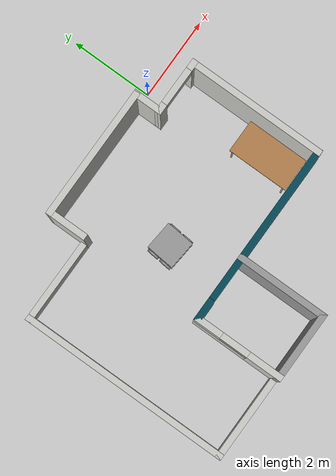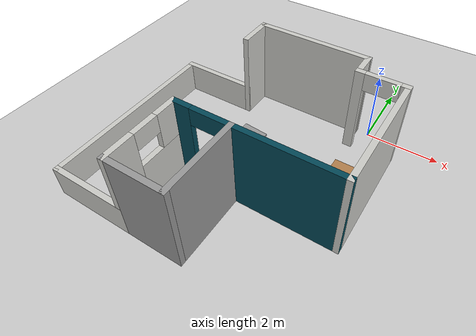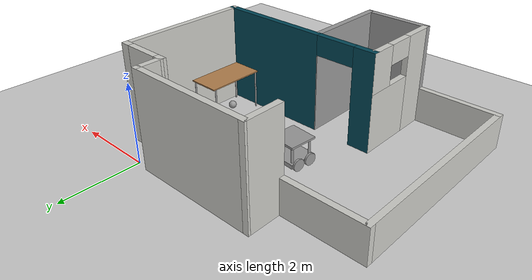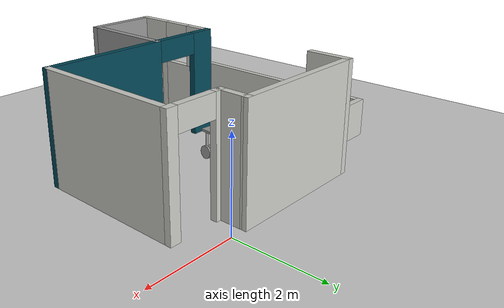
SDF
<sdf version="1.6">
 <world name="default">
  <model name="ground_plane">
   <static>1</static>
   <link name="link">
    <collision name="collision">
     <geometry><plane><normal>0 0 1</normal><size>100 100</size></plane></geometry>
     <surface>
      <contact><collide_bitmask>65535</collide_bitmask></contact>
      <friction><ode><mu>100</mu><mu2>50</mu2></ode></friction>
     </surface>
    </collision>
    <visual name="visual">
     <cast_shadows>0</cast_shadows>
     <geometry><plane><normal>0 0 1</normal><size>100 100</size></plane></geometry>
     <material>
      <script><uri>file://media/materials/scripts/gazebo.material</uri><name>Gazebo/Grey</name></script>
     </material>
    </visual>
   </link>
  </model>
  <model name="Estudio">
   <pose>-2.36913 -2.98637 0 0 -0 0</pose>
   <link name="Wall_10">
    <collision name="Wall_10_Collision">
     <geometry><box><size>0.755589 0.15 2.5</size></box></geometry>
     <pose>0 0 1.25 0 -0 0</pose>
    </collision>
    <visual name="Wall_10_Visual">
     <pose>0 0 1.25 0 -0 0</pose>
     <geometry><box><size>0.755589 0.15 2.5</size></box></geometry>
     <material>
      <script><uri>file://media/materials/scripts/gazebo.material</uri><name>Gazebo/CeilingTiled</name></script>
      <ambient>1 1 1 1</ambient>
     </material>
     <meta><layer>0</layer></meta>
    </visual>
    <pose>1.975 2.67195 0 0 -0 1.57073</pose>
   </link>
   <link name="Wall_11">
    <collision name="Wall_11_Collision">
     <geometry><box><size>3.25 0.15 2.5</size></box></geometry>
     <pose>0 0 1.25 0 -0 0</pose>
    </collision>
    <visual name="Wall_11_Visual">
     <pose>0 0 1.25 0 -0 0</pose>
     <geometry><box><size>3.25 0.15 2.5</size></box></geometry>
     <material>
      <script><uri>file://media/materials/scripts/gazebo.material</uri><name>Gazebo/CeilingTiled</name></script>
      <ambient>1 1 1 1</ambient>
     </material>
     <meta><layer>0</layer></meta>
    </visual>
    <pose>0.425019 2.97484 0 0 -0 3.14159</pose>
   </link>
   <link name="Wall_12">
    <collision name="Wall_12_Collision">
     <geometry><box><size>1 0.15 2.5</size></box></geometry>
     <pose>0 0 1.25 0 -0 0</pose>
    </collision>
    <visual name="Wall_12_Visual">
     <pose>0 0 1.25 0 -0 0</pose>
     <geometry><box><size>1 0.15 2.5</size></box></geometry>
     <material>
      <script><uri>file://media/materials/scripts/gazebo.material</uri><name>Gazebo/CeilingTiled</name></script>
      <ambient>1 1 1 1</ambient>
     </material>
     <meta><layer>0</layer></meta>
    </visual>
    <pose>-1.125 2.54995 0 0 0 -1.57084</pose>
   </link>
   <link name="Wall_13">
    <collision name="Wall_13_Collision">
     <geometry><box><size>2.25 0.15 0.9</size></box></geometry>
     <pose>0 0 0.45 0 -0 0</pose>
    </collision>
    <visual name="Wall_13_Visual">
     <pose>0 0 0.45 0 -0 0</pose>
     <geometry><box><size>2.25 0.15 0.9</size></box></geometry>
     <material>
      <script><uri>file://media/materials/scripts/gazebo.material</uri><name>Gazebo/CeilingTiled</name></script>
      <ambient>1 1 1 1</ambient>
     </material>
     <meta><layer>0</layer></meta>
    </visual>
    <pose>-2.17502 2.12505 0 0 -0 3.14159</pose>
   </link>
   <link name="Wall_14">
    <collision name="Wall_14_Collision">
     <geometry><box><size>5.25 0.15 0.9</size></box></geometry>
     <pose>0 0 0.45 0 -0 0</pose>
    </collision>
    <visual name="Wall_14_Visual">
     <pose>0 0 0.45 0 -0 0</pose>
     <geometry><box><size>5.25 0.15 0.9</size></box></geometry>
     <material>
      <script><uri>file://media/materials/scripts/gazebo.material</uri><name>Gazebo/CeilingTiled</name></script>
      <ambient>1 1 1 1</ambient>
     </material>
     <meta><layer>0</layer></meta>
    </visual>
    <pose>-3.22502 -0.424948 0 0 0 -1.5708</pose>
   </link>
   <link name="Wall_15">
    <collision name="Wall_15_Collision">
     <geometry><box><size>2.25 0.15 0.9</size></box></geometry>
     <pose>0 0 0.45 0 -0 0</pose>
    </collision>
    <visual name="Wall_15_Visual">
     <pose>0 0 0.45 0 -0 0</pose>
     <geometry><box><size>2.25 0.15 0.9</size></box></geometry>
     <material>
      <script><uri>file://media/materials/scripts/gazebo.material</uri><name>Gazebo/CeilingTiled</name></script>
      <ambient>1 1 1 1</ambient>
     </material>
     <meta><layer>0</layer></meta>
    </visual>
    <pose>-2.17502 -2.97495 0 0 -0 0</pose>
   </link>
   <link name="Wall_16">
    <pose>-1.12502 -1.92495 0 0 -0 1.5708</pose>
    <visual name="Wall_16_Visual_0">
     <pose>-0.691612 0 1.25 0 -0 0</pose>
     <geometry><box><size>0.866775 0.15 2.5</size></box></geometry>
     <material>
      <script><uri>file://media/materials/scripts/gazebo.material</uri><name>Gazebo/CeilingTiled</name></script>
      <ambient>1 1 1 1</ambient>
     </material>
     <meta><layer>0</layer></meta>
    </visual>
    <collision name="Wall_16_Collision_0">
     <geometry><box><size>0.866775 0.15 2.5</size></box></geometry>
     <pose>-0.691612 0 1.25 0 -0 0</pose>
    </collision>
    <visual name="Wall_16_Visual_1">
     <pose>0.433388 0 0.75 0 -0 0</pose>
     <geometry><box><size>1.38322 0.15 1.5</size></box></geometry>
     <material>
      <script><uri>file://media/materials/scripts/gazebo.material</uri><name>Gazebo/CeilingTiled</name></script>
      <ambient>1 1 1 1</ambient>
     </material>
     <meta><layer>0</layer></meta>
    </visual>
    <collision name="Wall_16_Collision_1">
     <geometry><box><size>1.38322 0.15 1.5</size></box></geometry>
     <pose>0.433388 0 0.75 0 -0 0</pose>
    </collision>
    <visual name="Wall_16_Visual_2">
     <pose>0.783388 0 2 0 -0 0</pose>
     <geometry><box><size>0.683225 0.15 1</size></box></geometry>
     <material>
      <script><uri>file://media/materials/scripts/gazebo.material</uri><name>Gazebo/CeilingTiled</name></script>
      <ambient>1 1 1 1</ambient>
     </material>
     <meta><layer>0</layer></meta>
    </visual>
    <collision name="Wall_16_Collision_2">
     <geometry><box><size>0.683225 0.15 1</size></box></geometry>
     <pose>0.783388 0 2 0 -0 0</pose>
    </collision>
    <visual name="Wall_16_Visual_3">
     <pose>0.091775 0 2.25 0 -0 0</pose>
     <geometry><box><size>0.7 0.15 0.5</size></box></geometry>
     <material>
      <script><uri>file://media/materials/scripts/gazebo.material</uri><name>Gazebo/CeilingTiled</name></script>
      <ambient>1 1 1 1</ambient>
     </material>
     <meta><layer>0</layer></meta>
    </visual>
    <collision name="Wall_16_Collision_3">
     <geometry><box><size>0.7 0.15 0.5</size></box></geometry>
     <pose>0.091775 0 2.25 0 -0 0</pose>
    </collision>
   </link>
   <link name="Wall_34">
    <pose>2.59998 2.36905 0 0 -0 0</pose>
    <visual name="Wall_34_Visual_0">
     <pose>-0.572677 0 1.25 0 -0 0</pose>
     <geometry><box><size>0.254646 0.15 2.5</size></box></geometry>
     <material>
      <script><uri>file://media/materials/scripts/gazebo.material</uri><name>Gazebo/CeilingTiled</name></script>
      <ambient>1 1 1 1</ambient>
     </material>
     <meta><layer>0</layer></meta>
    </visual>
    <collision name="Wall_34_Collision_0">
     <geometry><box><size>0.254646 0.15 2.5</size></box></geometry>
     <pose>-0.572677 0 1.25 0 -0 0</pose>
    </collision>
    <visual name="Wall_34_Visual_1">
     <pose>0.577323 0 1.25 0 -0 0</pose>
     <geometry><box><size>0.245354 0.15 2.5</size></box></geometry>
     <material>
      <script><uri>file://media/materials/scripts/gazebo.material</uri><name>Gazebo/CeilingTiled</name></script>
      <ambient>1 1 1 1</ambient>
     </material>
     <meta><layer>0</layer></meta>
    </visual>
    <collision name="Wall_34_Collision_1">
     <geometry><box><size>0.245354 0.15 2.5</size></box></geometry>
     <pose>0.577323 0 1.25 0 -0 0</pose>
    </collision>
    <visual name="Wall_34_Visual_2">
     <pose>0.004646 0 2.25 0 -0 0</pose>
     <geometry><box><size>0.9 0.15 0.5</size></box></geometry>
     <material>
      <script><uri>file://media/materials/scripts/gazebo.material</uri><name>Gazebo/CeilingTiled</name></script>
      <ambient>1 1 1 1</ambient>
     </material>
     <meta><layer>0</layer></meta>
    </visual>
    <collision name="Wall_34_Collision_2">
     <geometry><box><size>0.9 0.15 0.5</size></box></geometry>
     <pose>0.004646 0 2.25 0 -0 0</pose>
    </collision>
   </link>
   <link name="Wall_39">
    <pose>1.04998 -0.874948 0 0 -0 0</pose>
    <visual name="Wall_39_Visual_0">
     <pose>-1.96241 0 1.25 0 -0 0</pose>
     <geometry><box><size>0.575182 0.15 2.5</size></box></geometry>
     <material>
      <script><uri>file://media/materials/scripts/gazebo.material</uri><name>Gazebo/Grey</name></script>
      <ambient>0.0117647 0.282353 0.345098 1</ambient>
     </material>
     <meta><layer>0</layer></meta>
    </visual>
    <collision name="Wall_39_Collision_0">
     <geometry><box><size>0.575182 0.15 2.5</size></box></geometry>
     <pose>-1.96241 0 1.25 0 -0 0</pose>
    </collision>
    <visual name="Wall_39_Visual_1">
     <pose>0.798266 0 1.25 0 -0 0</pose>
     <geometry><box><size>2.90347 0.15 2.5</size></box></geometry>
     <material>
      <script><uri>file://media/materials/scripts/gazebo.material</uri><name>Gazebo/Grey</name></script>
      <ambient>0.0117647 0.282353 0.345098 1</ambient>
     </material>
     <meta><layer>0</layer></meta>
    </visual>
    <collision name="Wall_39_Collision_1">
     <geometry><box><size>2.90347 0.15 2.5</size></box></geometry>
     <pose>0.798266 0 1.25 0 -0 0</pose>
    </collision>
    <visual name="Wall_39_Visual_2">
     <pose>-1.16414 0 2.25 0 -0 0</pose>
     <geometry><box><size>1.02135 0.15 0.5</size></box></geometry>
     <material>
      <script><uri>file://media/materials/scripts/gazebo.material</uri><name>Gazebo/Grey</name></script>
      <ambient>0.0117647 0.282353 0.345098 1</ambient>
     </material>
     <meta><layer>0</layer></meta>
    </visual>
    <collision name="Wall_39_Collision_2">
     <geometry><box><size>1.02135 0.15 0.5</size></box></geometry>
     <pose>-1.16414 0 2.25 0 -0 0</pose>
    </collision>
   </link>
   <link name="Wall_42">
    <collision name="Wall_42_Collision">
     <geometry><box><size>3.25 0.15 2.5</size></box></geometry>
     <pose>0 0 1.25 0 -0 0</pose>
    </collision>
    <visual name="Wall_42_Visual">
     <pose>0 0 1.25 0 -0 0</pose>
     <geometry><box><size>3.25 0.15 2.5</size></box></geometry>
     <material>
      <script><uri>file://media/materials/scripts/gazebo.material</uri><name>Gazebo/CeilingTiled</name></script>
      <ambient>1 1 1 1</ambient>
     </material>
     <meta><layer>0</layer></meta>
    </visual>
    <pose>3.225 0.674945 0 0 -0 1.57078</pose>
   </link>
   <link name="Wall_44">
    <collision name="Wall_44_Collision">
     <geometry><box><size>2.25 0.15 2.5</size></box></geometry>
     <pose>0 0 1.25 0 -0 0</pose>
    </collision>
    <visual name="Wall_44_Visual">
     <pose>0 0 1.25 0 -0 0</pose>
     <geometry><box><size>2.25 0.15 2.5</size></box></geometry>
     <material>
      <script><uri>file://media/materials/scripts/gazebo.material</uri><name>Gazebo/Grey</name></script>
      <ambient>1 1 1 1</ambient>
     </material>
     <meta><layer>0</layer></meta>
    </visual>
    <pose>0.450981 -1.92495 0 0 0 -1.5708</pose>
   </link>
   <link name="Wall_45">
    <collision name="Wall_45_Collision">
     <geometry><box><size>1.726 0.15 2.5</size></box></geometry>
     <pose>0 0 1.25 0 -0 0</pose>
    </collision>
    <visual name="Wall_45_Visual">
     <pose>0 0 1.25 0 -0 0</pose>
     <geometry><box><size>1.726 0.15 2.5</size></box></geometry>
     <material>
      <script><uri>file://media/materials/scripts/gazebo.material</uri><name>Gazebo/Grey</name></script>
      <ambient>1 1 1 1</ambient>
     </material>
     <meta><layer>0</layer></meta>
    </visual>
    <pose>-0.33702 -2.97495 0 0 -0 3.14159</pose>
   </link>
   <static>1</static>
  </model>
  <model name="table_0">
   <static>1</static>
   <link name="link">
    <collision name="surface">
     <pose>0 0 1 0 -0 0</pose>
     <geometry><box><size>1.5 0.8 0.03</size></box></geometry>
     <surface><friction><ode><mu>0.6</mu><mu2>0.6</mu2></ode></friction></surface>
    </collision>
    <visual name="visual1">
     <pose>0 0 1 0 -0 0</pose>
     <geometry><box><size>1.5 0.8 0.03</size></box></geometry>
     <material>
      <script><uri>file://media/materials/scripts/gazebo.material</uri><name>Gazebo/Wood</name></script>
     </material>
    </visual>
    <collision name="front_left_leg">
     <pose>0.68 0.38 0.5 0 -0 0</pose>
     <geometry><cylinder><radius>0.02</radius><length>1</length></cylinder></geometry>
    </collision>
    <visual name="front_left_leg">
     <pose>0.68 0.38 0.5 0 -0 0</pose>
     <geometry><cylinder><radius>0.02</radius><length>1</length></cylinder></geometry>
     <material>
      <script><uri>file://media/materials/scripts/gazebo.material</uri><name>Gazebo/Grey</name></script>
     </material>
    </visual>
    <collision name="front_right_leg">
     <pose>0.68 -0.38 0.5 0 -0 0</pose>
     <geometry><cylinder><radius>0.02</radius><length>1</length></cylinder></geometry>
    </collision>
    <visual name="front_right_leg">
     <pose>0.68 -0.38 0.5 0 -0 0</pose>
     <geometry><cylinder><radius>0.02</radius><length>1</length></cylinder></geometry>
     <material>
      <script><uri>file://media/materials/scripts/gazebo.material</uri><name>Gazebo/Grey</name></script>
     </material>
    </visual>
    <collision name="back_right_leg">
     <pose>-0.68 -0.38 0.5 0 -0 0</pose>
     <geometry><cylinder><radius>0.02</radius><length>1</length></cylinder></geometry>
    </collision>
    <visual name="back_right_leg">
     <pose>-0.68 -0.38 0.5 0 -0 0</pose>
     <geometry><cylinder><radius>0.02</radius><length>1</length></cylinder></geometry>
     <material>
      <script><uri>file://media/materials/scripts/gazebo.material</uri><name>Gazebo/Grey</name></script>
     </material>
    </visual>
    <collision name="back_left_leg">
     <pose>-0.68 0.38 0.5 0 -0 0</pose>
     <geometry><cylinder><radius>0.02</radius><length>1</length></cylinder></geometry>
    </collision>
    <visual name="back_left_leg">
     <pose>-0.68 0.38 0.5 0 -0 0</pose>
     <geometry><cylinder><radius>0.02</radius><length>1</length></cylinder></geometry>
     <material>
      <script><uri>file://media/materials/scripts/gazebo.material</uri><name>Gazebo/Grey</name></script>
     </material>
    </visual>
   </link>
   <pose>0.338582 -3.00522 0 0 0 -1.5724</pose>
  </model>
  <model name="Robot">
   <link name="link_0">
    <pose>-0 0 -0.1475 0 -0 0</pose>
    <inertial>
     <mass>1</mass>
     <inertia>
      <ixx>0.166667</ixx>
      <ixy>0</ixy>
      <ixz>0</ixz>
      <iyy>0.166667</iyy>
      <iyz>0</iyz>
      <izz>0.166667</izz>
     </inertia>
    </inertial>
    <visual name="visual">
     <geometry><box><size>0.7 0.7 0.1</size></box></geometry>
     <material>
      <lighting>1</lighting>
      <script><uri>file://media/materials/scripts/gazebo.material</uri><name>Gazebo/Grey</name></script>
      <shader type="pixel"><normal_map>__default__</normal_map></shader>
      <ambient>0.3 0.3 0.3 1</ambient>
      <diffuse>0.7 0.7 0.7 1</diffuse>
      <specular>0.01 0.01 0.01 1</specular>
      <emissive>0 0 0 1</emissive>
     </material>
    </visual>
    <collision name="collision">
     <geometry><box><size>0.7 0.7 0.1</size></box></geometry>
     <surface>
      <friction>
       <ode><mu>1</mu><mu2>1</mu2><fdir1>0 0 0</fdir1><slip1>0</slip1><slip2>0</slip2></ode>
       <torsional>
        <coefficient>1</coefficient>
        <patch_radius>0</patch_radius>
        <surface_radius>0</surface_radius>
        <use_patch_radius>1</use_patch_radius>
        <ode><slip>0</slip></ode>
       </torsional>
      </friction>
      <bounce><restitution_coefficient>0</restitution_coefficient><threshold>1e+06</threshold></bounce>
      <contact>
       <collide_without_contact>0</collide_without_contact>
       <collide_without_contact_bitmask>1</collide_without_contact_bitmask>
       <collide_bitmask>1</collide_bitmask>
       <ode>
        <soft_cfm>0</soft_cfm>
        <soft_erp>0.2</soft_erp>
        <kp>1e+13</kp>
        <kd>1</kd>
        <max_vel>0.01</max_vel>
        <min_depth>0</min_depth>
       </ode>
       <bullet>
        <split_impulse>1</split_impulse>
        <split_impulse_penetration_threshold>-0.01</split_impulse_penetration_threshold>
        <soft_cfm>0</soft_cfm>
        <soft_erp>0.2</soft_erp>
        <kp>1e+13</kp>
        <kd>1</kd>
       </bullet>
      </contact>
     </surface>
    </collision>
   </link>
   <link name="link_1">
    <pose>0.375 0.175 -0.1475 1.5608 -0 1.5608</pose>
    <inertial>
     <mass>1</mass>
     <inertia><ixx>0.145833</ixx><ixy>0</ixy><ixz>0</ixz><iyy>0.145833</iyy><iyz>0</iyz><izz>0.125</izz></inertia>
    </inertial>
    <visual name="visual">
     <geometry><cylinder><radius>0.15</radius><length>0.05</length></cylinder></geometry>
     <material>
      <lighting>1</lighting>
      <script><uri>file://media/materials/scripts/gazebo.material</uri><name>Gazebo/Grey</name></script>
      <shader type="pixel"><normal_map>__default__</normal_map></shader>
      <ambient>0.3 0.3 0.3 1</ambient>
      <diffuse>0.7 0.7 0.7 1</diffuse>
      <specular>0.01 0.01 0.01 1</specular>
      <emissive>0 0 0 1</emissive>
     </material>
    </visual>
    <collision name="collision">
     <geometry><cylinder><radius>0.15</radius><length>0.05</length></cylinder></geometry>
     <surface>
      <friction>
       <ode><mu>1</mu><mu2>1</mu2><fdir1>0 0 0</fdir1><slip1>0</slip1><slip2>0</slip2></ode>
       <torsional>
        <coefficient>1</coefficient>
        <patch_radius>0</patch_radius>
        <surface_radius>0</surface_radius>
        <use_patch_radius>1</use_patch_radius>
        <ode><slip>0</slip></ode>
       </torsional>
      </friction>
      <bounce><restitution_coefficient>0</restitution_coefficient><threshold>1e+06</threshold></bounce>
      <contact>
       <collide_without_contact>0</collide_without_contact>
       <collide_without_contact_bitmask>1</collide_without_contact_bitmask>
       <collide_bitmask>1</collide_bitmask>
       <ode>
        <soft_cfm>0</soft_cfm>
        <soft_erp>0.2</soft_erp>
        <kp>1e+13</kp>
        <kd>1</kd>
        <max_vel>0.01</max_vel>
        <min_depth>0</min_depth>
       </ode>
       <bullet>
        <split_impulse>1</split_impulse>
        <split_impulse_penetration_threshold>-0.01</split_impulse_penetration_threshold>
        <soft_cfm>0</soft_cfm>
        <soft_erp>0.2</soft_erp>
        <kp>1e+13</kp>
        <kd>1</kd>
       </bullet>
      </contact>
     </surface>
    </collision>
   </link>
   <link name="link_1_clone">
    <pose>0.375 -0.175 -0.1475 1.5608 -0 1.5608</pose>
    <inertial>
     <mass>1</mass>
     <inertia><ixx>0.145833</ixx><ixy>0</ixy><ixz>0</ixz><iyy>0.145833</iyy><iyz>0</iyz><izz>0.125</izz></inertia>
    </inertial>
    <visual name="visual">
     <geometry><cylinder><radius>0.15</radius><length>0.05</length></cylinder></geometry>
     <material>
      <lighting>1</lighting>
      <script><uri>file://media/materials/scripts/gazebo.material</uri><name>Gazebo/Grey</name></script>
      <shader type="pixel"><normal_map>__default__</normal_map></shader>
      <ambient>0.3 0.3 0.3 1</ambient>
      <diffuse>0.7 0.7 0.7 1</diffuse>
      <specular>0.01 0.01 0.01 1</specular>
      <emissive>0 0 0 1</emissive>
     </material>
    </visual>
    <collision name="collision">
     <geometry><cylinder><radius>0.15</radius><length>0.05</length></cylinder></geometry>
     <surface>
      <friction>
       <ode><mu>1</mu><mu2>1</mu2><fdir1>0 0 0</fdir1><slip1>0</slip1><slip2>0</slip2></ode>
       <torsional>
        <coefficient>1</coefficient>
        <patch_radius>0</patch_radius>
        <surface_radius>0</surface_radius>
        <use_patch_radius>1</use_patch_radius>
        <ode><slip>0</slip></ode>
       </torsional>
      </friction>
      <bounce><restitution_coefficient>0</restitution_coefficient><threshold>1e+06</threshold></bounce>
      <contact>
       <collide_without_contact>0</collide_without_contact>
       <collide_without_contact_bitmask>1</collide_without_contact_bitmask>
       <collide_bitmask>1</collide_bitmask>
       <ode>
        <soft_cfm>0</soft_cfm>
        <soft_erp>0.2</soft_erp>
        <kp>1e+13</kp>
        <kd>1</kd>
        <max_vel>0.01</max_vel>
        <min_depth>0</min_depth>
       </ode>
       <bullet>
        <split_impulse>1</split_impulse>
        <split_impulse_penetration_threshold>-0.01</split_impulse_penetration_threshold>
        <soft_cfm>0</soft_cfm>
        <soft_erp>0.2</soft_erp>
        <kp>1e+13</kp>
        <kd>1</kd>
       </bullet>
      </contact>
     </surface>
    </collision>
   </link>
   <link name="link_1_clone_clone">
    <pose>-0.375 -0.175 -0.1475 1.5608 -0 1.5608</pose>
    <inertial>
     <mass>1</mass>
     <inertia><ixx>0.145833</ixx><ixy>0</ixy><ixz>0</ixz><iyy>0.145833</iyy><iyz>0</iyz><izz>0.125</izz></inertia>
    </inertial>
    <visual name="visual">
     <geometry><cylinder><radius>0.15</radius><length>0.05</length></cylinder></geometry>
     <material>
      <lighting>1</lighting>
      <script><uri>file://media/materials/scripts/gazebo.material</uri><name>Gazebo/Grey</name></script>
      <shader type="pixel"><normal_map>__default__</normal_map></shader>
      <ambient>0.3 0.3 0.3 1</ambient>
      <diffuse>0.7 0.7 0.7 1</diffuse>
      <specular>0.01 0.01 0.01 1</specular>
      <emissive>0 0 0 1</emissive>
     </material>
    </visual>
    <collision name="collision">
     <geometry><cylinder><radius>0.15</radius><length>0.05</length></cylinder></geometry>
     <surface>
      <friction>
       <ode><mu>1</mu><mu2>1</mu2><fdir1>0 0 0</fdir1><slip1>0</slip1><slip2>0</slip2></ode>
       <torsional>
        <coefficient>1</coefficient>
        <patch_radius>0</patch_radius>
        <surface_radius>0</surface_radius>
        <use_patch_radius>1</use_patch_radius>
        <ode><slip>0</slip></ode>
       </torsional>
      </friction>
      <bounce><restitution_coefficient>0</restitution_coefficient><threshold>1e+06</threshold></bounce>
      <contact>
       <collide_without_contact>0</collide_without_contact>
       <collide_without_contact_bitmask>1</collide_without_contact_bitmask>
       <collide_bitmask>1</collide_bitmask>
       <ode>
        <soft_cfm>0</soft_cfm>
        <soft_erp>0.2</soft_erp>
        <kp>1e+13</kp>
        <kd>1</kd>
        <max_vel>0.01</max_vel>
        <min_depth>0</min_depth>
       </ode>
       <bullet>
        <split_impulse>1</split_impulse>
        <split_impulse_penetration_threshold>-0.01</split_impulse_penetration_threshold>
        <soft_cfm>0</soft_cfm>
        <soft_erp>0.2</soft_erp>
        <kp>1e+13</kp>
        <kd>1</kd>
       </bullet>
      </contact>
     </surface>
    </collision>
   </link>
   <link name="link_1_clone_clone_0">
    <pose>-0.375 0.175 -0.1475 1.5608 -0 1.5608</pose>
    <inertial>
     <mass>1</mass>
     <inertia><ixx>0.145833</ixx><ixy>0</ixy><ixz>0</ixz><iyy>0.145833</iyy><iyz>0</iyz><izz>0.125</izz></inertia>
    </inertial>
    <visual name="visual">
     <geometry><cylinder><radius>0.15</radius><length>0.05</length></cylinder></geometry>
     <material>
      <lighting>1</lighting>
      <script><uri>file://media/materials/scripts/gazebo.material</uri><name>Gazebo/Grey</name></script>
      <shader type="pixel"><normal_map>__default__</normal_map></shader>
      <ambient>0.3 0.3 0.3 1</ambient>
      <diffuse>0.7 0.7 0.7 1</diffuse>
      <specular>0.01 0.01 0.01 1</specular>
      <emissive>0 0 0 1</emissive>
     </material>
    </visual>
    <collision name="collision">
     <geometry><cylinder><radius>0.15</radius><length>0.05</length></cylinder></geometry>
     <surface>
      <friction>
       <ode><mu>1</mu><mu2>1</mu2><fdir1>0 0 0</fdir1><slip1>0</slip1><slip2>0</slip2></ode>
       <torsional>
        <coefficient>1</coefficient>
        <patch_radius>0</patch_radius>
        <surface_radius>0</surface_radius>
        <use_patch_radius>1</use_patch_radius>
        <ode><slip>0</slip></ode>
       </torsional>
      </friction>
      <bounce><restitution_coefficient>0</restitution_coefficient><threshold>1e+06</threshold></bounce>
      <contact>
       <collide_without_contact>0</collide_without_contact>
       <collide_without_contact_bitmask>1</collide_without_contact_bitmask>
       <collide_bitmask>1</collide_bitmask>
       <ode>
        <soft_cfm>0</soft_cfm>
        <soft_erp>0.2</soft_erp>
        <kp>1e+13</kp>
        <kd>1</kd>
        <max_vel>0.01</max_vel>
        <min_depth>0</min_depth>
       </ode>
       <bullet>
        <split_impulse>1</split_impulse>
        <split_impulse_penetration_threshold>-0.01</split_impulse_penetration_threshold>
        <soft_cfm>0</soft_cfm>
        <soft_erp>0.2</soft_erp>
        <kp>1e+13</kp>
        <kd>1</kd>
       </bullet>
      </contact>
     </surface>
    </collision>
   </link>
   <link name="link_3">
    <pose>0.2625 0.2625 0.1025 0 -0 0</pose>
    <inertial>
     <mass>1</mass>
     <inertia><ixx>0.145833</ixx><ixy>0</ixy><ixz>0</ixz><iyy>0.145833</iyy><iyz>0</iyz><izz>0.125</izz></inertia>
    </inertial>
    <visual name="visual">
     <geometry><cylinder><radius>0.03</radius><length>0.4</length></cylinder></geometry>
     <material>
      <lighting>1</lighting>
      <script><uri>file://media/materials/scripts/gazebo.material</uri><name>Gazebo/Grey</name></script>
      <shader type="pixel"><normal_map>__default__</normal_map></shader>
      <ambient>0.3 0.3 0.3 1</ambient>
      <diffuse>0.7 0.7 0.7 1</diffuse>
      <specular>0.01 0.01 0.01 1</specular>
      <emissive>0 0 0 1</emissive>
     </material>
    </visual>
    <collision name="collision">
     <geometry><cylinder><radius>0.03</radius><length>0.4</length></cylinder></geometry>
     <surface>
      <friction>
       <ode><mu>1</mu><mu2>1</mu2><fdir1>0 0 0</fdir1><slip1>0</slip1><slip2>0</slip2></ode>
       <torsional>
        <coefficient>1</coefficient>
        <patch_radius>0</patch_radius>
        <surface_radius>0</surface_radius>
        <use_patch_radius>1</use_patch_radius>
        <ode><slip>0</slip></ode>
       </torsional>
      </friction>
      <bounce><restitution_coefficient>0</restitution_coefficient><threshold>1e+06</threshold></bounce>
      <contact>
       <collide_without_contact>0</collide_without_contact>
       <collide_without_contact_bitmask>1</collide_without_contact_bitmask>
       <collide_bitmask>1</collide_bitmask>
       <ode>
        <soft_cfm>0</soft_cfm>
        <soft_erp>0.2</soft_erp>
        <kp>1e+13</kp>
        <kd>1</kd>
        <max_vel>0.01</max_vel>
        <min_depth>0</min_depth>
       </ode>
       <bullet>
        <split_impulse>1</split_impulse>
        <split_impulse_penetration_threshold>-0.01</split_impulse_penetration_threshold>
        <soft_cfm>0</soft_cfm>
        <soft_erp>0.2</soft_erp>
        <kp>1e+13</kp>
        <kd>1</kd>
       </bullet>
      </contact>
     </surface>
    </collision>
   </link>
   <link name="link_3_clone">
    <pose>0.2625 -0.2625 0.1025 0 -0 0</pose>
    <inertial>
     <mass>1</mass>
     <inertia><ixx>0.145833</ixx><ixy>0</ixy><ixz>0</ixz><iyy>0.145833</iyy><iyz>0</iyz><izz>0.125</izz></inertia>
    </inertial>
    <visual name="visual">
     <geometry><cylinder><radius>0.03</radius><length>0.4</length></cylinder></geometry>
     <material>
      <lighting>1</lighting>
      <script><uri>file://media/materials/scripts/gazebo.material</uri><name>Gazebo/Grey</name></script>
      <shader type="pixel"><normal_map>__default__</normal_map></shader>
      <ambient>0.3 0.3 0.3 1</ambient>
      <diffuse>0.7 0.7 0.7 1</diffuse>
      <specular>0.01 0.01 0.01 1</specular>
      <emissive>0 0 0 1</emissive>
     </material>
    </visual>
    <collision name="collision">
     <geometry><cylinder><radius>0.03</radius><length>0.4</length></cylinder></geometry>
     <surface>
      <friction>
       <ode><mu>1</mu><mu2>1</mu2><fdir1>0 0 0</fdir1><slip1>0</slip1><slip2>0</slip2></ode>
       <torsional>
        <coefficient>1</coefficient>
        <patch_radius>0</patch_radius>
        <surface_radius>0</surface_radius>
        <use_patch_radius>1</use_patch_radius>
        <ode><slip>0</slip></ode>
       </torsional>
      </friction>
      <bounce><restitution_coefficient>0</restitution_coefficient><threshold>1e+06</threshold></bounce>
      <contact>
       <collide_without_contact>0</collide_without_contact>
       <collide_without_contact_bitmask>1</collide_without_contact_bitmask>
       <collide_bitmask>1</collide_bitmask>
       <ode>
        <soft_cfm>0</soft_cfm>
        <soft_erp>0.2</soft_erp>
        <kp>1e+13</kp>
        <kd>1</kd>
        <max_vel>0.01</max_vel>
        <min_depth>0</min_depth>
       </ode>
       <bullet>
        <split_impulse>1</split_impulse>
        <split_impulse_penetration_threshold>-0.01</split_impulse_penetration_threshold>
        <soft_cfm>0</soft_cfm>
        <soft_erp>0.2</soft_erp>
        <kp>1e+13</kp>
        <kd>1</kd>
       </bullet>
      </contact>
     </surface>
    </collision>
   </link>
   <link name="link_3_clone_0">
    <pose>-0.2625 -0.2625 0.1025 0 -0 0</pose>
    <inertial>
     <mass>1</mass>
     <inertia><ixx>0.145833</ixx><ixy>0</ixy><ixz>0</ixz><iyy>0.145833</iyy><iyz>0</iyz><izz>0.125</izz></inertia>
    </inertial>
    <visual name="visual">
     <geometry><cylinder><radius>0.03</radius><length>0.4</length></cylinder></geometry>
     <material>
      <lighting>1</lighting>
      <script><uri>file://media/materials/scripts/gazebo.material</uri><name>Gazebo/Grey</name></script>
      <shader type="pixel"><normal_map>__default__</normal_map></shader>
      <ambient>0.3 0.3 0.3 1</ambient>
      <diffuse>0.7 0.7 0.7 1</diffuse>
      <specular>0.01 0.01 0.01 1</specular>
      <emissive>0 0 0 1</emissive>
     </material>
    </visual>
    <collision name="collision">
     <geometry><cylinder><radius>0.03</radius><length>0.4</length></cylinder></geometry>
     <surface>
      <friction>
       <ode><mu>1</mu><mu2>1</mu2><fdir1>0 0 0</fdir1><slip1>0</slip1><slip2>0</slip2></ode>
       <torsional>
        <coefficient>1</coefficient>
        <patch_radius>0</patch_radius>
        <surface_radius>0</surface_radius>
        <use_patch_radius>1</use_patch_radius>
        <ode><slip>0</slip></ode>
       </torsional>
      </friction>
      <bounce><restitution_coefficient>0</restitution_coefficient><threshold>1e+06</threshold></bounce>
      <contact>
       <collide_without_contact>0</collide_without_contact>
       <collide_without_contact_bitmask>1</collide_without_contact_bitmask>
       <collide_bitmask>1</collide_bitmask>
       <ode>
        <soft_cfm>0</soft_cfm>
        <soft_erp>0.2</soft_erp>
        <kp>1e+13</kp>
        <kd>1</kd>
        <max_vel>0.01</max_vel>
        <min_depth>0</min_depth>
       </ode>
       <bullet>
        <split_impulse>1</split_impulse>
        <split_impulse_penetration_threshold>-0.01</split_impulse_penetration_threshold>
        <soft_cfm>0</soft_cfm>
        <soft_erp>0.2</soft_erp>
        <kp>1e+13</kp>
        <kd>1</kd>
       </bullet>
      </contact>
     </surface>
    </collision>
   </link>
   <link name="link_3_clone_1">
    <pose>-0.2625 0.2625 0.1025 0 -0 0</pose>
    <inertial>
     <mass>1</mass>
     <inertia><ixx>0.145833</ixx><ixy>0</ixy><ixz>0</ixz><iyy>0.145833</iyy><iyz>0</iyz><izz>0.125</izz></inertia>
    </inertial>
    <visual name="visual">
     <geometry><cylinder><radius>0.03</radius><length>0.4</length></cylinder></geometry>
     <material>
      <lighting>1</lighting>
      <script><uri>file://media/materials/scripts/gazebo.material</uri><name>Gazebo/Grey</name></script>
      <shader type="pixel"><normal_map>__default__</normal_map></shader>
      <ambient>0.3 0.3 0.3 1</ambient>
      <diffuse>0.7 0.7 0.7 1</diffuse>
      <specular>0.01 0.01 0.01 1</specular>
      <emissive>0 0 0 1</emissive>
     </material>
    </visual>
    <collision name="collision">
     <geometry><cylinder><radius>0.03</radius><length>0.4</length></cylinder></geometry>
     <surface>
      <friction>
       <ode><mu>1</mu><mu2>1</mu2><fdir1>0 0 0</fdir1><slip1>0</slip1><slip2>0</slip2></ode>
       <torsional>
        <coefficient>1</coefficient>
        <patch_radius>0</patch_radius>
        <surface_radius>0</surface_radius>
        <use_patch_radius>1</use_patch_radius>
        <ode><slip>0</slip></ode>
       </torsional>
      </friction>
      <bounce><restitution_coefficient>0</restitution_coefficient><threshold>1e+06</threshold></bounce>
      <contact>
       <collide_without_contact>0</collide_without_contact>
       <collide_without_contact_bitmask>1</collide_without_contact_bitmask>
       <collide_bitmask>1</collide_bitmask>
       <ode>
        <soft_cfm>0</soft_cfm>
        <soft_erp>0.2</soft_erp>
        <kp>1e+13</kp>
        <kd>1</kd>
        <max_vel>0.01</max_vel>
        <min_depth>0</min_depth>
       </ode>
       <bullet>
        <split_impulse>1</split_impulse>
        <split_impulse_penetration_threshold>-0.01</split_impulse_penetration_threshold>
        <soft_cfm>0</soft_cfm>
        <soft_erp>0.2</soft_erp>
        <kp>1e+13</kp>
        <kd>1</kd>
       </bullet>
      </contact>
     </surface>
    </collision>
   </link>
   <link name="link_4">
    <pose>-0 0 0.3275 0 -0 0</pose>
    <inertial>
     <mass>1</mass>
     <inertia>
      <ixx>0.166667</ixx>
      <ixy>0</ixy>
      <ixz>0</ixz>
      <iyy>0.166667</iyy>
      <iyz>0</iyz>
      <izz>0.166667</izz>
     </inertia>
    </inertial>
    <visual name="visual">
     <geometry><box><size>0.7 0.7 0.05</size></box></geometry>
     <material>
      <lighting>1</lighting>
      <script><uri>file://media/materials/scripts/gazebo.material</uri><name>Gazebo/Grey</name></script>
      <shader type="pixel"><normal_map>__default__</normal_map></shader>
      <ambient>0.3 0.3 0.3 1</ambient>
      <diffuse>0.7 0.7 0.7 1</diffuse>
      <specular>0.01 0.01 0.01 1</specular>
      <emissive>0 0 0 1</emissive>
     </material>
    </visual>
    <collision name="collision">
     <geometry><box><size>0.7 0.7 0.05</size></box></geometry>
     <surface>
      <friction>
       <ode><mu>1</mu><mu2>1</mu2><fdir1>0 0 0</fdir1><slip1>0</slip1><slip2>0</slip2></ode>
       <torsional>
        <coefficient>1</coefficient>
        <patch_radius>0</patch_radius>
        <surface_radius>0</surface_radius>
        <use_patch_radius>1</use_patch_radius>
        <ode><slip>0</slip></ode>
       </torsional>
      </friction>
      <bounce><restitution_coefficient>0</restitution_coefficient><threshold>1e+06</threshold></bounce>
      <contact>
       <collide_without_contact>0</collide_without_contact>
       <collide_without_contact_bitmask>1</collide_without_contact_bitmask>
       <collide_bitmask>1</collide_bitmask>
       <ode>
        <soft_cfm>0</soft_cfm>
        <soft_erp>0.2</soft_erp>
        <kp>1e+13</kp>
        <kd>1</kd>
        <max_vel>0.01</max_vel>
        <min_depth>0</min_depth>
       </ode>
       <bullet>
        <split_impulse>1</split_impulse>
        <split_impulse_penetration_threshold>-0.01</split_impulse_penetration_threshold>
        <soft_cfm>0</soft_cfm>
        <soft_erp>0.2</soft_erp>
        <kp>1e+13</kp>
        <kd>1</kd>
       </bullet>
      </contact>
     </surface>
    </collision>
   </link>
   <joint name="link_0_JOINT_0" type="revolute">
    <parent>link_0</parent>
    <child>link_1_clone_clone_0</child>
    <axis>
     <xyz>0 0 1</xyz>
     <use_parent_model_frame>0</use_parent_model_frame>
     <limit>
      <lower>-1.79769e+308</lower>
      <upper>1.79769e+308</upper>
      <effort>-1</effort>
      <velocity>-1</velocity>
     </limit>
     <dynamics>
      <spring_reference>0</spring_reference>
      <spring_stiffness>0</spring_stiffness>
      <damping>0</damping>
      <friction>0</friction>
     </dynamics>
     <use_parent_model_frame>1</use_parent_model_frame>
    </axis>
    <physics>
     <ode><limit><cfm>0</cfm><erp>0.2</erp></limit><suspension><cfm>0</cfm><erp>0.2</erp></suspension></ode>
    </physics>
   </joint>
   <joint name="link_0_JOINT_2" type="revolute">
    <parent>link_0</parent>
    <child>link_1_clone_clone</child>
    <axis>
     <xyz>0 0 1</xyz>
     <use_parent_model_frame>0</use_parent_model_frame>
     <limit>
      <lower>-1.79769e+308</lower>
      <upper>1.79769e+308</upper>
      <effort>-1</effort>
      <velocity>-1</velocity>
     </limit>
     <dynamics>
      <spring_reference>0</spring_reference>
      <spring_stiffness>0</spring_stiffness>
      <damping>0</damping>
      <friction>0</friction>
     </dynamics>
     <use_parent_model_frame>1</use_parent_model_frame>
    </axis>
    <physics>
     <ode><limit><cfm>0</cfm><erp>0.2</erp></limit><suspension><cfm>0</cfm><erp>0.2</erp></suspension></ode>
    </physics>
   </joint>
   <joint name="link_0_JOINT_3" type="revolute">
    <parent>link_0</parent>
    <child>link_1</child>
    <axis>
     <xyz>1 0 0</xyz>
     <use_parent_model_frame>0</use_parent_model_frame>
     <limit>
      <lower>-1.79769e+308</lower>
      <upper>1.79769e+308</upper>
      <effort>-1</effort>
      <velocity>-1</velocity>
     </limit>
     <dynamics>
      <spring_reference>0</spring_reference>
      <spring_stiffness>0</spring_stiffness>
      <damping>0</damping>
     </dynamics>
     <use_parent_model_frame>1</use_parent_model_frame>
    </axis>
    <physics>
     <ode><limit><cfm>0</cfm><erp>0.2</erp></limit><suspension><cfm>0</cfm><erp>0.2</erp></suspension></ode>
    </physics>
   </joint>
   <joint name="link_0_JOINT_4" type="revolute">
    <parent>link_0</parent>
    <child>link_1_clone</child>
    <axis>
     <xyz>0 0 1</xyz>
     <use_parent_model_frame>0</use_parent_model_frame>
     <limit>
      <lower>-1.79769e+308</lower>
      <upper>1.79769e+308</upper>
      <effort>-1</effort>
      <velocity>-1</velocity>
     </limit>
     <dynamics>
      <spring_reference>0</spring_reference>
      <spring_stiffness>0</spring_stiffness>
      <damping>0</damping>
      <friction>0</friction>
     </dynamics>
     <use_parent_model_frame>1</use_parent_model_frame>
    </axis>
    <physics>
     <ode><limit><cfm>0</cfm><erp>0.2</erp></limit><suspension><cfm>0</cfm><erp>0.2</erp></suspension></ode>
    </physics>
   </joint>
   <joint name="link_0_JOINT_5" type="fixed">
    <parent>link_0</parent>
    <child>link_3</child>
    <physics>
     <ode><limit><cfm>0</cfm><erp>0.2</erp></limit><suspension><cfm>0</cfm><erp>0.2</erp></suspension></ode>
    </physics>
   </joint>
   <joint name="link_0_JOINT_7" type="revolute">
    <parent>link_0</parent>
    <child>link_3_clone</child>
    <axis>
     <xyz>1 0 0</xyz>
     <use_parent_model_frame>0</use_parent_model_frame>
     <limit>
      <lower>-1.79769e+308</lower>
      <upper>1.79769e+308</upper>
      <effort>-1</effort>
      <velocity>-1</velocity>
     </limit>
     <dynamics>
      <spring_reference>0</spring_reference>
      <spring_stiffness>0</spring_stiffness>
      <damping>0</damping>
     </dynamics>
     <use_parent_model_frame>1</use_parent_model_frame>
    </axis>
    <physics>
     <ode><limit><cfm>0</cfm><erp>0.2</erp></limit><suspension><cfm>0</cfm><erp>0.2</erp></suspension></ode>
    </physics>
   </joint>
   <joint name="link_0_JOINT_8" type="fixed">
    <parent>link_0</parent>
    <child>link_3_clone_1</child>
    <physics>
     <ode><limit><cfm>0</cfm><erp>0.2</erp></limit><suspension><cfm>0</cfm><erp>0.2</erp></suspension></ode>
    </physics>
   </joint>
   <joint name="link_0_JOINT_9" type="fixed">
    <parent>link_0</parent>
    <child>link_3_clone_0</child>
    <physics>
     <ode><limit><cfm>0</cfm><erp>0.2</erp></limit><suspension><cfm>0</cfm><erp>0.2</erp></suspension></ode>
    </physics>
   </joint>
   <joint name="link_4_JOINT_10" type="fixed">
    <parent>link_4</parent>
    <child>link_3</child>
    <pose>0 0 0 -0.05 0 0</pose>
    <physics>
     <ode><limit><cfm>0</cfm><erp>0.2</erp></limit><suspension><cfm>0</cfm><erp>0.2</erp></suspension></ode>
    </physics>
   </joint>
   <joint name="link_4_JOINT_11" type="fixed">
    <parent>link_4</parent>
    <child>link_3_clone</child>
    <pose>0 0 0 -0.04 0 0</pose>
    <physics>
     <ode><limit><cfm>0</cfm><erp>0.2</erp></limit><suspension><cfm>0</cfm><erp>0.2</erp></suspension></ode>
    </physics>
   </joint>
   <joint name="link_4_JOINT_12" type="fixed">
    <parent>link_4</parent>
    <child>link_3_clone_0</child>
    <pose>0 0 0 0 0 -0.05</pose>
    <physics>
     <ode><limit><cfm>0</cfm><erp>0.2</erp></limit><suspension><cfm>0</cfm><erp>0.2</erp></suspension></ode>
    </physics>
   </joint>
   <joint name="link_4_JOINT_13" type="fixed">
    <parent>link_4</parent>
    <child>link_3_clone_1</child>
    <physics>
     <ode><limit><cfm>0</cfm><erp>0.2</erp></limit><suspension><cfm>0</cfm><erp>0.2</erp></suspension></ode>
    </physics>
   </joint>
   <static>0</static>
   <pose>-2.48574 -2.40205 0.297742 -5e-06 2e-06 -0.091021</pose>
  </model>
  <model name="my_ball">
   <link name="link_0">
    <inertial>
     <mass>1</mass>
     <inertia><ixx>0.1</ixx><ixy>0</ixy><ixz>0</ixz><iyy>0.1</iyy><iyz>0</iyz><izz>0.1</izz></inertia>
    </inertial>
    <visual name="visual">
     <geometry><sphere><radius>0.1</radius></sphere></geometry>
     <material>
      <lighting>1</lighting>
      <script><uri>file://media/materials/scripts/gazebo.material</uri><name>Gazebo/Grey</name></script>
      <shader type="pixel"><normal_map>__default__</normal_map></shader>
      <ambient>1 1 1 1</ambient>
      <diffuse>1 1 1 1</diffuse>
      <specular>1 1 1 1</specular>
      <emissive>1 1 1 1</emissive>
     </material>
    </visual>
    <collision name="collision">
     <geometry><sphere><radius>0.1</radius></sphere></geometry>
     <surface>
      <friction>
       <ode><mu>1</mu><mu2>1</mu2><fdir1>0 0 0</fdir1><slip1>0</slip1><slip2>0</slip2></ode>
       <torsional>
        <coefficient>1</coefficient>
        <patch_radius>0</patch_radius>
        <surface_radius>0</surface_radius>
        <use_patch_radius>1</use_patch_radius>
        <ode><slip>0</slip></ode>
       </torsional>
      </friction>
      <bounce><restitution_coefficient>0</restitution_coefficient><threshold>1e+06</threshold></bounce>
      <contact>
       <collide_without_contact>0</collide_without_contact>
       <collide_without_contact_bitmask>1</collide_without_contact_bitmask>
       <collide_bitmask>1</collide_bitmask>
       <ode>
        <soft_cfm>0</soft_cfm>
        <soft_erp>0.2</soft_erp>
        <kp>1e+13</kp>
        <kd>1</kd>
        <max_vel>0.01</max_vel>
        <min_depth>0</min_depth>
       </ode>
       <bullet>
        <split_impulse>1</split_impulse>
        <split_impulse_penetration_threshold>-0.01</split_impulse_penetration_threshold>
        <soft_cfm>0</soft_cfm>
        <soft_erp>0.2</soft_erp>
        <kp>1e+13</kp>
        <kd>1</kd>
       </bullet>
      </contact>
     </surface>
    </collision>
   </link>
   <static>0</static>
   <pose>0.341435 -3.19569 0.1 0 -0 0</pose>
  </model>
 </world>
</sdf>
